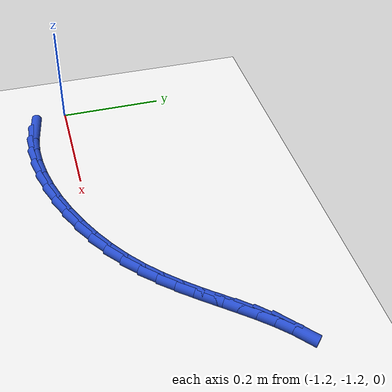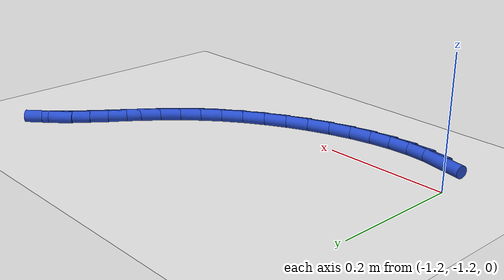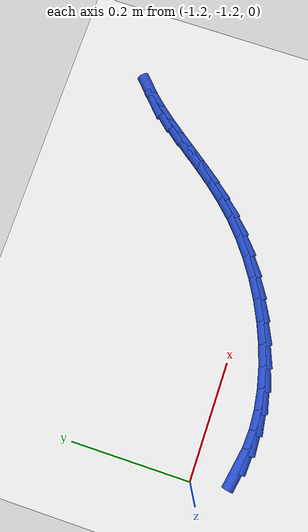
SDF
<sdf version="1.6">
 <world name="default">
  <model name="ground_plane">
   <static>1</static>
   <link name="link">
    <collision name="collision">
     <geometry><plane><normal>0 0 1</normal><size>100 100</size></plane></geometry>
     <surface><friction><ode><mu>100</mu><mu2>50</mu2></ode></friction></surface>
    </collision>
    <visual name="visual">
     <cast_shadows>0</cast_shadows>
     <geometry><plane><normal>0 0 1</normal><size>100 100</size></plane></geometry>
     <material>
      <script><uri>file://media/materials/scripts/gazebo.material</uri><name>Gazebo/WhiteGlow</name></script>
     </material>
    </visual>
   </link>
  </model>
  <model name="line">
   <link name="link_180">
    <pose>-1.1517252758146272 -1.2662979422539975 0.01 0 1.57 -0.1859937554799463</pose>
    <collision name="collision">
     <geometry><cylinder><radius>0.01</radius><length>0.08</length></cylinder></geometry>
    </collision>
    <visual name="visual">
     <material>
      <script><name>Gazebo/Blue</name><uri>file://media/materials/scripts/gazebo.material</uri></script>
     </material>
     <geometry><cylinder><radius>0.01</radius><length>0.08</length></cylinder></geometry>
    </visual>
   </link>
   <link name="link_181">
    <pose>-1.1219254862408594 -1.2719053266593103 0.01 0 1.57 -0.05675631245268525</pose>
    <collision name="collision">
     <geometry><cylinder><radius>0.01</radius><length>0.08</length></cylinder></geometry>
    </collision>
    <visual name="visual">
     <material>
      <script><name>Gazebo/Blue</name><uri>file://media/materials/scripts/gazebo.material</uri></script>
     </material>
     <geometry><cylinder><radius>0.01</radius><length>0.08</length></cylinder></geometry>
    </visual>
   </link>
   <link name="link_182">
    <pose>-1.090266490716521 -1.2737041063732473 0.01 0 1.57 0.05371511504566431</pose>
    <collision name="collision">
     <geometry><cylinder><radius>0.01</radius><length>0.08</length></cylinder></geometry>
    </collision>
    <visual name="visual">
     <material>
      <script><name>Gazebo/Blue</name><uri>file://media/materials/scripts/gazebo.material</uri></script>
     </material>
     <geometry><cylinder><radius>0.01</radius><length>0.08</length></cylinder></geometry>
    </visual>
   </link>
   <link name="link_183">
    <pose>-1.0571785241695304 -1.2719250710894447 0.01 0 1.57 0.14926449823099716</pose>
    <collision name="collision">
     <geometry><cylinder><radius>0.01</radius><length>0.08</length></cylinder></geometry>
    </collision>
    <visual name="visual">
     <material>
      <script><name>Gazebo/Blue</name><uri>file://media/materials/scripts/gazebo.material</uri></script>
     </material>
     <geometry><cylinder><radius>0.01</radius><length>0.08</length></cylinder></geometry>
    </visual>
   </link>
   <link name="link_184">
    <pose>-1.0230918215278062 -1.2667990105015394 0.01 0 1.57 0.2334989597844593</pose>
    <collision name="collision">
     <geometry><cylinder><radius>0.01</radius><length>0.08</length></cylinder></geometry>
    </collision>
    <visual name="visual">
     <material>
      <script><name>Gazebo/Blue</name><uri>file://media/materials/scripts/gazebo.material</uri></script>
     </material>
     <geometry><cylinder><radius>0.01</radius><length>0.08</length></cylinder></geometry>
    </visual>
   </link>
   <link name="link_185">
    <pose>-0.9884366177192658 -1.258556714303167 0.01 0 1.57 0.3095421205336435</pose>
    <collision name="collision">
     <geometry><cylinder><radius>0.01</radius><length>0.08</length></cylinder></geometry>
    </collision>
    <visual name="visual">
     <material>
      <script><name>Gazebo/Blue</name><uri>file://media/materials/scripts/gazebo.material</uri></script>
     </material>
     <geometry><cylinder><radius>0.01</radius><length>0.08</length></cylinder></geometry>
    </visual>
   </link>
   <link name="link_186">
    <pose>-0.9536431476718299 -1.247428972187965 0.01 0 1.57 0.38005148647037373</pose>
    <collision name="collision">
     <geometry><cylinder><radius>0.01</radius><length>0.08</length></cylinder></geometry>
    </collision>
    <visual name="visual">
     <material>
      <script><name>Gazebo/Blue</name><uri>file://media/materials/scripts/gazebo.material</uri></script>
     </material>
     <geometry><cylinder><radius>0.01</radius><length>0.08</length></cylinder></geometry>
    </visual>
   </link>
   <link name="link_187">
    <pose>-0.9191416463134158 -1.2336465738495688 0.01 0 1.57 0.44733233401334555</pose>
    <collision name="collision">
     <geometry><cylinder><radius>0.01</radius><length>0.08</length></cylinder></geometry>
    </collision>
    <visual name="visual">
     <material>
      <script><name>Gazebo/Blue</name><uri>file://media/materials/scripts/gazebo.material</uri></script>
     </material>
     <geometry><cylinder><radius>0.01</radius><length>0.08</length></cylinder></geometry>
    </visual>
   </link>
   <link name="link_188">
    <pose>-0.8853623485719417 -1.2174403089816155 0.01 0 1.57 0.5134768778394503</pose>
    <collision name="collision">
     <geometry><cylinder><radius>0.01</radius><length>0.08</length></cylinder></geometry>
    </collision>
    <visual name="visual">
     <material>
      <script><name>Gazebo/Blue</name><uri>file://media/materials/scripts/gazebo.material</uri></script>
     </material>
     <geometry><cylinder><radius>0.01</radius><length>0.08</length></cylinder></geometry>
    </visual>
   </link>
   <link name="link_189">
    <pose>-0.8527354893753268 -1.1990409672777413 0.01 0 1.57 0.5805059840561746</pose>
    <collision name="collision">
     <geometry><cylinder><radius>0.01</radius><length>0.08</length></cylinder></geometry>
    </collision>
    <visual name="visual">
     <material>
      <script><name>Gazebo/Blue</name><uri>file://media/materials/scripts/gazebo.material</uri></script>
     </material>
     <geometry><cylinder><radius>0.01</radius><length>0.08</length></cylinder></geometry>
    </visual>
   </link>
   <link name="link_190">
    <pose>-0.8216913036514893 -1.1786793384315828 0.01 0 1.57 0.6505110912663448</pose>
    <collision name="collision">
     <geometry><cylinder><radius>0.01</radius><length>0.08</length></cylinder></geometry>
    </collision>
    <visual name="visual">
     <material>
      <script><name>Gazebo/Blue</name><uri>file://media/materials/scripts/gazebo.material</uri></script>
     </material>
     <geometry><cylinder><radius>0.01</radius><length>0.08</length></cylinder></geometry>
    </visual>
   </link>
   <link name="link_191">
    <pose>-0.7926600263283476 -1.156586212136776 0.01 0 1.57 0.7255806093912116</pose>
    <collision name="collision">
     <geometry><cylinder><radius>0.01</radius><length>0.08</length></cylinder></geometry>
    </collision>
    <visual name="visual">
     <material>
      <script><name>Gazebo/Blue</name><uri>file://media/materials/scripts/gazebo.material</uri></script>
     </material>
     <geometry><cylinder><radius>0.01</radius><length>0.08</length></cylinder></geometry>
    </visual>
   </link>
   <link name="link_192">
    <pose>-0.7660623855688836 -1.1329943694259954 0.01 0 1.57 0.7990130367152783</pose>
    <collision name="collision">
     <geometry><cylinder><radius>0.01</radius><length>0.08</length></cylinder></geometry>
    </collision>
    <visual name="visual">
     <material>
      <script><name>Gazebo/Blue</name><uri>file://media/materials/scripts/gazebo.material</uri></script>
     </material>
     <geometry><cylinder><radius>0.01</radius><length>0.08</length></cylinder></geometry>
    </visual>
   </link>
   <link name="link_193">
    <pose>-0.7419480612199666 -1.1082143131439084 0.01 0 1.57 0.8586055833499359</pose>
    <collision name="collision">
     <geometry><cylinder><radius>0.01</radius><length>0.08</length></cylinder></geometry>
    </collision>
    <visual name="visual">
     <material>
      <script><name>Gazebo/Blue</name><uri>file://media/materials/scripts/gazebo.material</uri></script>
     </material>
     <geometry><cylinder><radius>0.01</radius><length>0.08</length></cylinder></geometry>
    </visual>
   </link>
   <link name="link_194">
    <pose>-0.7198838744520777 -1.0826576883574581 0.01 0 1.57 0.9020184716048124</pose>
    <collision name="collision">
     <geometry><cylinder><radius>0.01</radius><length>0.08</length></cylinder></geometry>
    </collision>
    <visual name="visual">
     <material>
      <script><name>Gazebo/Blue</name><uri>file://media/materials/scripts/gazebo.material</uri></script>
     </material>
     <geometry><cylinder><radius>0.01</radius><length>0.08</length></cylinder></geometry>
    </visual>
   </link>
   <link name="link_195">
    <pose>-0.6994042901504082 -1.0567429176582739 0.01 0 1.57 0.9280470111446868</pose>
    <collision name="collision">
     <geometry><cylinder><radius>0.01</radius><length>0.08</length></cylinder></geometry>
    </collision>
    <visual name="visual">
     <material>
      <script><name>Gazebo/Blue</name><uri>file://media/materials/scripts/gazebo.material</uri></script>
     </material>
     <geometry><cylinder><radius>0.01</radius><length>0.08</length></cylinder></geometry>
    </visual>
   </link>
   <link name="link_196">
    <pose>-0.68004377320015 -1.0308884236379858 0.01 0 1.57 0.9355389807557095</pose>
    <collision name="collision">
     <geometry><cylinder><radius>0.01</radius><length>0.08</length></cylinder></geometry>
    </collision>
    <visual name="visual">
     <material>
      <script><name>Gazebo/Blue</name><uri>file://media/materials/scripts/gazebo.material</uri></script>
     </material>
     <geometry><cylinder><radius>0.01</radius><length>0.08</length></cylinder></geometry>
    </visual>
   </link>
   <link name="link_197">
    <pose>-0.6613367884864946 -1.005512628888223 0.01 0 1.57 0.9231255359925282</pose>
    <collision name="collision">
     <geometry><cylinder><radius>0.01</radius><length>0.08</length></cylinder></geometry>
    </collision>
    <visual name="visual">
     <material>
      <script><name>Gazebo/Blue</name><uri>file://media/materials/scripts/gazebo.material</uri></script>
     </material>
     <geometry><cylinder><radius>0.01</radius><length>0.08</length></cylinder></geometry>
    </visual>
   </link>
   <link name="link_198">
    <pose>-0.6428178008946337 -0.9810339560006159 0.01 0 1.57 0.8890916121119374</pose>
    <collision name="collision">
     <geometry><cylinder><radius>0.01</radius><length>0.08</length></cylinder></geometry>
    </collision>
    <visual name="visual">
     <material>
      <script><name>Gazebo/Blue</name><uri>file://media/materials/scripts/gazebo.material</uri></script>
     </material>
     <geometry><cylinder><radius>0.01</radius><length>0.08</length></cylinder></geometry>
    </visual>
   </link>
   <link name="link_199">
    <pose>-0.624021275309759 -0.9578708275667941 0.01 0 1.57 0.8314875384942507</pose>
    <collision name="collision">
     <geometry><cylinder><radius>0.01</radius><length>0.08</length></cylinder></geometry>
    </collision>
    <visual name="visual">
     <material>
      <script><name>Gazebo/Blue</name><uri>file://media/materials/scripts/gazebo.material</uri></script>
     </material>
     <geometry><cylinder><radius>0.01</radius><length>0.08</length></cylinder></geometry>
    </visual>
   </link>
   <link name="link_200">
    <pose>-0.604481676617061 -0.9364416661783856 0.01 0 1.57 0.7486517899490205</pose>
    <collision name="collision">
     <geometry><cylinder><radius>0.01</radius><length>0.08</length></cylinder></geometry>
    </collision>
    <visual name="visual">
     <material>
      <script><name>Gazebo/Blue</name><uri>file://media/materials/scripts/gazebo.material</uri></script>
     </material>
     <geometry><cylinder><radius>0.01</radius><length>0.08</length></cylinder></geometry>
    </visual>
   </link>
  </model>
 </world>
</sdf>
